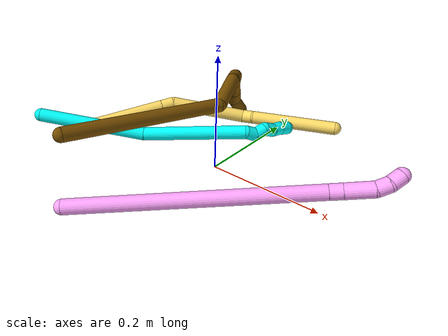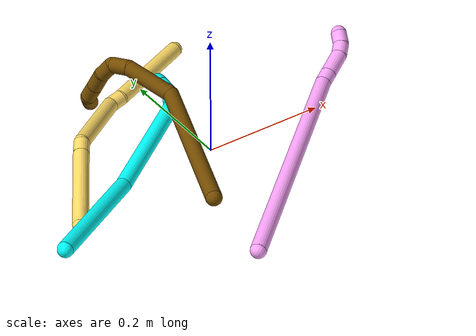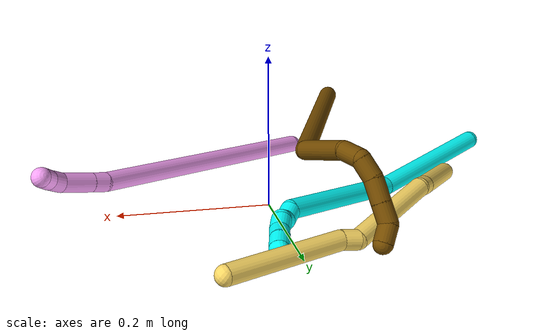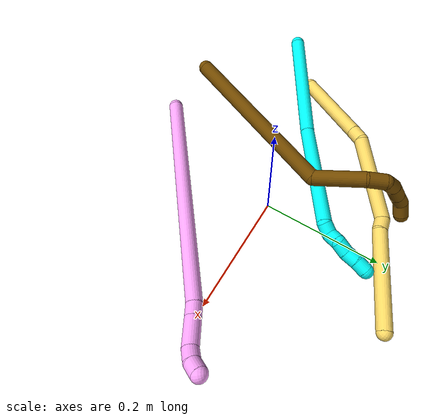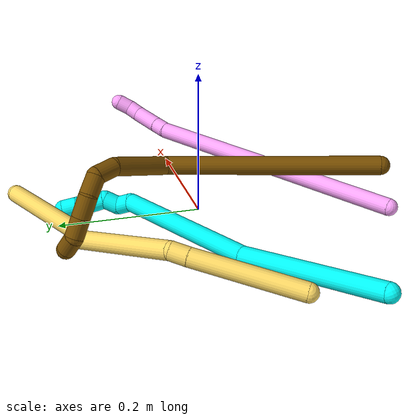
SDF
<sdf version="1.7">
 <world name="default">
  <model name="3">
   <static>0</static>
   <link name="3">
    <collision name="collision-cylinder-e_1_1_4">
     <pose>0.061668 0.057629 0.057524 -0.786308 0.648191 -0.276878</pose>
     <geometry><cylinder><radius>0.0125</radius><length>0.204286</length></cylinder></geometry>
     <surface>
      <friction><ode><mu>1.16</mu><mu2>1.16</mu2><slip1>0</slip1><slip2>0</slip2></ode></friction>
      <contact><ode><kp>1e+06</kp><kd>1</kd><max_vel>0</max_vel><min_depth>0.001</min_depth></ode></contact>
     </surface>
    </collision>
    <visual name="visual-cylinder-e_1_1_4">
     <pose>0.061668 0.057629 0.057524 -0.786308 0.648191 -0.276878</pose>
     <geometry><cylinder><radius>0.0125</radius><length>0.204286</length></cylinder></geometry>
     <material><ambient>0.003922 1 0.996078 1</ambient></material>
    </visual>
    <collision name="collision-cylinder-e_2_4_5">
     <pose>0.1962 0.155992 0.164533 -0.688709 0.849345 -0.32155</pose>
     <geometry><cylinder><radius>0.0125</radius><length>0.194081</length></cylinder></geometry>
     <surface>
      <friction><ode><mu>1.16</mu><mu2>1.16</mu2><slip1>0</slip1><slip2>0</slip2></ode></friction>
      <contact><ode><kp>1e+06</kp><kd>1</kd><max_vel>0</max_vel><min_depth>0.001</min_depth></ode></contact>
     </surface>
    </collision>
    <visual name="visual-cylinder-e_2_4_5">
     <pose>0.1962 0.155992 0.164533 -0.688709 0.849345 -0.32155</pose>
     <geometry><cylinder><radius>0.0125</radius><length>0.194081</length></cylinder></geometry>
     <material><ambient>0.003922 1 0.996078 1</ambient></material>
    </visual>
    <collision name="collision-cylinder-e_3_5_6">
     <pose>0.271879 0.201075 0.22275 -0.462036 0.28107 -0.066527</pose>
     <geometry><cylinder><radius>0.0125</radius><length>0.020309</length></cylinder></geometry>
     <surface>
      <friction><ode><mu>1.16</mu><mu2>1.16</mu2><slip1>0</slip1><slip2>0</slip2></ode></friction>
      <contact><ode><kp>1e+06</kp><kd>1</kd><max_vel>0</max_vel><min_depth>0.001</min_depth></ode></contact>
     </surface>
    </collision>
    <visual name="visual-cylinder-e_3_5_6">
     <pose>0.271879 0.201075 0.22275 -0.462036 0.28107 -0.066527</pose>
     <geometry><cylinder><radius>0.0125</radius><length>0.020309</length></cylinder></geometry>
     <material><ambient>0.003922 1 0.996078 1</ambient></material>
    </visual>
    <collision name="collision-cylinder-e_4_6_7">
     <pose>0.2824 0.204043 0.238386 0.197505 0.830465 0.087302</pose>
     <geometry><cylinder><radius>0.0125</radius><length>0.020871</length></cylinder></geometry>
     <surface>
      <friction><ode><mu>1.16</mu><mu2>1.16</mu2><slip1>0</slip1><slip2>0</slip2></ode></friction>
      <contact><ode><kp>1e+06</kp><kd>1</kd><max_vel>0</max_vel><min_depth>0.001</min_depth></ode></contact>
     </surface>
    </collision>
    <visual name="visual-cylinder-e_4_6_7">
     <pose>0.2824 0.204043 0.238386 0.197505 0.830465 0.087302</pose>
     <geometry><cylinder><radius>0.0125</radius><length>0.020871</length></cylinder></geometry>
     <material><ambient>0.003922 1 0.996078 1</ambient></material>
    </visual>
    <collision name="collision-cylinder-e_5_7_8">
     <pose>0.291899 0.205212 0.254894 -0.259572 0.178703 -0.023385</pose>
     <geometry><cylinder><radius>0.0125</radius><length>0.0202</length></cylinder></geometry>
     <surface>
      <friction><ode><mu>1.16</mu><mu2>1.16</mu2><slip1>0</slip1><slip2>0</slip2></ode></friction>
      <contact><ode><kp>1e+06</kp><kd>1</kd><max_vel>0</max_vel><min_depth>0.001</min_depth></ode></contact>
     </surface>
    </collision>
    <visual name="visual-cylinder-e_5_7_8">
     <pose>0.291899 0.205212 0.254894 -0.259572 0.178703 -0.023385</pose>
     <geometry><cylinder><radius>0.0125</radius><length>0.0202</length></cylinder></geometry>
     <material><ambient>0.003922 1 0.996078 1</ambient></material>
    </visual>
    <collision name="collision-cylinder-e_6_8_9">
     <pose>0.29665 0.207538 0.274153 0.02334 0.297009 0.003492</pose>
     <geometry><cylinder><radius>0.0125</radius><length>0.020195</length></cylinder></geometry>
     <surface>
      <friction><ode><mu>1.16</mu><mu2>1.16</mu2><slip1>0</slip1><slip2>0</slip2></ode></friction>
      <contact><ode><kp>1e+06</kp><kd>1</kd><max_vel>0</max_vel><min_depth>0.001</min_depth></ode></contact>
     </surface>
    </collision>
    <visual name="visual-cylinder-e_6_8_9">
     <pose>0.29665 0.207538 0.274153 0.02334 0.297009 0.003492</pose>
     <geometry><cylinder><radius>0.0125</radius><length>0.020195</length></cylinder></geometry>
     <material><ambient>0.003922 1 0.996078 1</ambient></material>
    </visual>
    <collision name="collision-cylinder-e_7_9_2">
     <pose>0.301726 0.20844 0.293543 -0.115279 0.213105 -0.012343</pose>
     <geometry><cylinder><radius>0.0125</radius><length>0.020057</length></cylinder></geometry>
     <surface>
      <friction><ode><mu>1.16</mu><mu2>1.16</mu2><slip1>0</slip1><slip2>0</slip2></ode></friction>
      <contact><ode><kp>1e+06</kp><kd>1</kd><max_vel>0</max_vel><min_depth>0.001</min_depth></ode></contact>
     </surface>
    </collision>
    <visual name="visual-cylinder-e_7_9_2">
     <pose>0.301726 0.20844 0.293543 -0.115279 0.213105 -0.012343</pose>
     <geometry><cylinder><radius>0.0125</radius><length>0.020057</length></cylinder></geometry>
     <material><ambient>0.003922 1 0.996078 1</ambient></material>
    </visual>
    <collision name="collision-sphere-2">
     <pose>0.303847 0.209568 0.303279 0 -0 0</pose>
     <geometry><sphere><radius>0.0125</radius></sphere></geometry>
     <surface>
      <friction><ode><mu>1.16</mu><mu2>1.16</mu2><slip1>0</slip1><slip2>0</slip2></ode></friction>
      <contact><ode><kp>1e+06</kp><kd>1</kd><max_vel>0</max_vel><min_depth>0.001</min_depth></ode></contact>
     </surface>
    </collision>
    <visual name="visual-sphere-2">
     <pose>0.303847 0.209568 0.303279 0 -0 0</pose>
     <geometry><sphere><radius>0.0125</radius></sphere></geometry>
     <material><ambient>0.003922 1 0.996078 1</ambient></material>
    </visual>
    <collision name="collision-sphere-9">
     <pose>0.299605 0.207313 0.283806 0 -0 0</pose>
     <geometry><sphere><radius>0.0125</radius></sphere></geometry>
     <surface>
      <friction><ode><mu>1.16</mu><mu2>1.16</mu2><slip1>0</slip1><slip2>0</slip2></ode></friction>
      <contact><ode><kp>1e+06</kp><kd>1</kd><max_vel>0</max_vel><min_depth>0.001</min_depth></ode></contact>
     </surface>
    </collision>
    <visual name="visual-sphere-9">
     <pose>0.299605 0.207313 0.283806 0 -0 0</pose>
     <geometry><sphere><radius>0.0125</radius></sphere></geometry>
     <material><ambient>0.003922 1 0.996078 1</ambient></material>
    </visual>
    <collision name="collision-sphere-4">
     <pose>0.123337 0.115259 0.115049 0 -0 0</pose>
     <geometry><sphere><radius>0.0125</radius></sphere></geometry>
     <surface>
      <friction><ode><mu>1.16</mu><mu2>1.16</mu2><slip1>0</slip1><slip2>0</slip2></ode></friction>
      <contact><ode><kp>1e+06</kp><kd>1</kd><max_vel>0</max_vel><min_depth>0.001</min_depth></ode></contact>
     </surface>
    </collision>
    <visual name="visual-sphere-4">
     <pose>0.123337 0.115259 0.115049 0 -0 0</pose>
     <geometry><sphere><radius>0.0125</radius></sphere></geometry>
     <material><ambient>0.003922 1 0.996078 1</ambient></material>
    </visual>
    <collision name="collision-sphere-1">
     <geometry><sphere><radius>0.0125</radius></sphere></geometry>
     <surface>
      <friction><ode><mu>1.16</mu><mu2>1.16</mu2><slip1>0</slip1><slip2>0</slip2></ode></friction>
      <contact><ode><kp>1e+06</kp><kd>1</kd><max_vel>0</max_vel><min_depth>0.001</min_depth></ode></contact>
     </surface>
    </collision>
    <visual name="visual-sphere-1">
     <geometry><sphere><radius>0.0125</radius></sphere></geometry>
     <material><ambient>0.003922 1 0.996078 1</ambient></material>
    </visual>
    <collision name="collision-sphere-8">
     <pose>0.293694 0.207763 0.2645 0 -0 0</pose>
     <geometry><sphere><radius>0.0125</radius></sphere></geometry>
     <surface>
      <friction><ode><mu>1.16</mu><mu2>1.16</mu2><slip1>0</slip1><slip2>0</slip2></ode></friction>
      <contact><ode><kp>1e+06</kp><kd>1</kd><max_vel>0</max_vel><min_depth>0.001</min_depth></ode></contact>
     </surface>
    </collision>
    <visual name="visual-sphere-8">
     <pose>0.293694 0.207763 0.2645 0 -0 0</pose>
     <geometry><sphere><radius>0.0125</radius></sphere></geometry>
     <material><ambient>0.003922 1 0.996078 1</ambient></material>
    </visual>
    <collision name="collision-sphere-5">
     <pose>0.269062 0.196726 0.214017 0 -0 0</pose>
     <geometry><sphere><radius>0.0125</radius></sphere></geometry>
     <surface>
      <friction><ode><mu>1.16</mu><mu2>1.16</mu2><slip1>0</slip1><slip2>0</slip2></ode></friction>
      <contact><ode><kp>1e+06</kp><kd>1</kd><max_vel>0</max_vel><min_depth>0.001</min_depth></ode></contact>
     </surface>
    </collision>
    <visual name="visual-sphere-5">
     <pose>0.269062 0.196726 0.214017 0 -0 0</pose>
     <geometry><sphere><radius>0.0125</radius></sphere></geometry>
     <material><ambient>0.003922 1 0.996078 1</ambient></material>
    </visual>
    <collision name="collision-sphere-6">
     <pose>0.274696 0.205424 0.231483 0 -0 0</pose>
     <geometry><sphere><radius>0.0125</radius></sphere></geometry>
     <surface>
      <friction><ode><mu>1.16</mu><mu2>1.16</mu2><slip1>0</slip1><slip2>0</slip2></ode></friction>
      <contact><ode><kp>1e+06</kp><kd>1</kd><max_vel>0</max_vel><min_depth>0.001</min_depth></ode></contact>
     </surface>
    </collision>
    <visual name="visual-sphere-6">
     <pose>0.274696 0.205424 0.231483 0 -0 0</pose>
     <geometry><sphere><radius>0.0125</radius></sphere></geometry>
     <material><ambient>0.003922 1 0.996078 1</ambient></material>
    </visual>
    <collision name="collision-sphere-7">
     <pose>0.290104 0.202661 0.245288 0 -0 0</pose>
     <geometry><sphere><radius>0.0125</radius></sphere></geometry>
     <surface>
      <friction><ode><mu>1.16</mu><mu2>1.16</mu2><slip1>0</slip1><slip2>0</slip2></ode></friction>
      <contact><ode><kp>1e+06</kp><kd>1</kd><max_vel>0</max_vel><min_depth>0.001</min_depth></ode></contact>
     </surface>
    </collision>
    <visual name="visual-sphere-7">
     <pose>0.290104 0.202661 0.245288 0 -0 0</pose>
     <geometry><sphere><radius>0.0125</radius></sphere></geometry>
     <material><ambient>0.003922 1 0.996078 1</ambient></material>
    </visual>
    <inertial>
     <pose>0.160063 0.125815 0.139513 0 -0 0</pose>
     <mass>0.5</mass>
     <inertia>
      <ixx>0.000683</ixx>
      <ixy>0</ixy>
      <ixz>0</ixz>
      <iyy>0.000855</iyy>
      <iyz>0</iyz>
      <izz>-0.001541</izz>
     </inertia>
    </inertial>
   </link>
   <pose>-0.335206 -0.122426 0.038494 -2.05857 -0.764641 0.346329</pose>
  </model>
  <model name="4">
   <static>0</static>
   <link name="4">
    <collision name="collision-cylinder-e_1_1_4">
     <pose>0.121141 0.152569 0.029058 -1.38259 0.662421 -0.554473</pose>
     <geometry><cylinder><radius>0.0125</radius><length>0.393938</length></cylinder></geometry>
     <surface>
      <friction><ode><mu>1.16</mu><mu2>1.16</mu2><slip1>0</slip1><slip2>0</slip2></ode></friction>
      <contact><ode><kp>1e+06</kp><kd>1</kd><max_vel>0</max_vel><min_depth>0.001</min_depth></ode></contact>
     </surface>
    </collision>
    <visual name="visual-cylinder-e_1_1_4">
     <pose>0.121141 0.152569 0.029058 -1.38259 0.662421 -0.554473</pose>
     <geometry><cylinder><radius>0.0125</radius><length>0.393938</length></cylinder></geometry>
     <material><ambient>1 0.65098 0.996078 1</ambient></material>
    </visual>
    <collision name="collision-cylinder-e_2_4_5">
     <pose>0.250066 0.312222 0.058558 -1.50852 0.831387 -0.786314</pose>
     <geometry><cylinder><radius>0.0125</radius><length>0.021068</length></cylinder></geometry>
     <surface>
      <friction><ode><mu>1.16</mu><mu2>1.16</mu2><slip1>0</slip1><slip2>0</slip2></ode></friction>
      <contact><ode><kp>1e+06</kp><kd>1</kd><max_vel>0</max_vel><min_depth>0.001</min_depth></ode></contact>
     </surface>
    </collision>
    <visual name="visual-cylinder-e_2_4_5">
     <pose>0.250066 0.312222 0.058558 -1.50852 0.831387 -0.786314</pose>
     <geometry><cylinder><radius>0.0125</radius><length>0.021068</length></cylinder></geometry>
     <material><ambient>1 0.65098 0.996078 1</ambient></material>
    </visual>
    <collision name="collision-cylinder-e_3_5_6">
     <pose>0.274263 0.333934 0.059991 -1.50311 0.841741 -0.792363</pose>
     <geometry><cylinder><radius>0.0125</radius><length>0.044019</length></cylinder></geometry>
     <surface>
      <friction><ode><mu>1.16</mu><mu2>1.16</mu2><slip1>0</slip1><slip2>0</slip2></ode></friction>
      <contact><ode><kp>1e+06</kp><kd>1</kd><max_vel>0</max_vel><min_depth>0.001</min_depth></ode></contact>
     </surface>
    </collision>
    <visual name="visual-cylinder-e_3_5_6">
     <pose>0.274263 0.333934 0.059991 -1.50311 0.841741 -0.792363</pose>
     <geometry><cylinder><radius>0.0125</radius><length>0.044019</length></cylinder></geometry>
     <material><ambient>1 0.65098 0.996078 1</ambient></material>
    </visual>
    <collision name="collision-cylinder-e_4_6_7">
     <pose>0.298604 0.354029 0.06426 -1.03075 0.893509 -0.52995</pose>
     <geometry><cylinder><radius>0.0125</radius><length>0.020341</length></cylinder></geometry>
     <surface>
      <friction><ode><mu>1.16</mu><mu2>1.16</mu2><slip1>0</slip1><slip2>0</slip2></ode></friction>
      <contact><ode><kp>1e+06</kp><kd>1</kd><max_vel>0</max_vel><min_depth>0.001</min_depth></ode></contact>
     </surface>
    </collision>
    <visual name="visual-cylinder-e_4_6_7">
     <pose>0.298604 0.354029 0.06426 -1.03075 0.893509 -0.52995</pose>
     <geometry><cylinder><radius>0.0125</radius><length>0.020341</length></cylinder></geometry>
     <material><ambient>1 0.65098 0.996078 1</ambient></material>
    </visual>
    <collision name="collision-cylinder-e_5_7_2">
     <pose>0.312887 0.364506 0.073936 -0.664304 0.66387 -0.236676</pose>
     <geometry><cylinder><radius>0.0125</radius><length>0.020634</length></cylinder></geometry>
     <surface>
      <friction><ode><mu>1.16</mu><mu2>1.16</mu2><slip1>0</slip1><slip2>0</slip2></ode></friction>
      <contact><ode><kp>1e+06</kp><kd>1</kd><max_vel>0</max_vel><min_depth>0.001</min_depth></ode></contact>
     </surface>
    </collision>
    <visual name="visual-cylinder-e_5_7_2">
     <pose>0.312887 0.364506 0.073936 -0.664304 0.66387 -0.236676</pose>
     <geometry><cylinder><radius>0.0125</radius><length>0.020634</length></cylinder></geometry>
     <material><ambient>1 0.65098 0.996078 1</ambient></material>
    </visual>
    <collision name="collision-sphere-2">
     <pose>0.319244 0.369516 0.080334 0 -0 0</pose>
     <geometry><sphere><radius>0.0125</radius></sphere></geometry>
     <surface>
      <friction><ode><mu>1.16</mu><mu2>1.16</mu2><slip1>0</slip1><slip2>0</slip2></ode></friction>
      <contact><ode><kp>1e+06</kp><kd>1</kd><max_vel>0</max_vel><min_depth>0.001</min_depth></ode></contact>
     </surface>
    </collision>
    <visual name="visual-sphere-2">
     <pose>0.319244 0.369516 0.080334 0 -0 0</pose>
     <geometry><sphere><radius>0.0125</radius></sphere></geometry>
     <material><ambient>1 0.65098 0.996078 1</ambient></material>
    </visual>
    <collision name="collision-sphere-7">
     <pose>0.30653 0.359496 0.067538 0 -0 0</pose>
     <geometry><sphere><radius>0.0125</radius></sphere></geometry>
     <surface>
      <friction><ode><mu>1.16</mu><mu2>1.16</mu2><slip1>0</slip1><slip2>0</slip2></ode></friction>
      <contact><ode><kp>1e+06</kp><kd>1</kd><max_vel>0</max_vel><min_depth>0.001</min_depth></ode></contact>
     </surface>
    </collision>
    <visual name="visual-sphere-7">
     <pose>0.30653 0.359496 0.067538 0 -0 0</pose>
     <geometry><sphere><radius>0.0125</radius></sphere></geometry>
     <material><ambient>1 0.65098 0.996078 1</ambient></material>
    </visual>
    <collision name="collision-sphere-6">
     <pose>0.290678 0.348563 0.060983 0 -0 0</pose>
     <geometry><sphere><radius>0.0125</radius></sphere></geometry>
     <surface>
      <friction><ode><mu>1.16</mu><mu2>1.16</mu2><slip1>0</slip1><slip2>0</slip2></ode></friction>
      <contact><ode><kp>1e+06</kp><kd>1</kd><max_vel>0</max_vel><min_depth>0.001</min_depth></ode></contact>
     </surface>
    </collision>
    <visual name="visual-sphere-6">
     <pose>0.290678 0.348563 0.060983 0 -0 0</pose>
     <geometry><sphere><radius>0.0125</radius></sphere></geometry>
     <material><ambient>1 0.65098 0.996078 1</ambient></material>
    </visual>
    <collision name="collision-sphere-5">
     <pose>0.257849 0.319306 0.059 0 -0 0</pose>
     <geometry><sphere><radius>0.0125</radius></sphere></geometry>
     <surface>
      <friction><ode><mu>1.16</mu><mu2>1.16</mu2><slip1>0</slip1><slip2>0</slip2></ode></friction>
      <contact><ode><kp>1e+06</kp><kd>1</kd><max_vel>0</max_vel><min_depth>0.001</min_depth></ode></contact>
     </surface>
    </collision>
    <visual name="visual-sphere-5">
     <pose>0.257849 0.319306 0.059 0 -0 0</pose>
     <geometry><sphere><radius>0.0125</radius></sphere></geometry>
     <material><ambient>1 0.65098 0.996078 1</ambient></material>
    </visual>
    <collision name="collision-sphere-1">
     <geometry><sphere><radius>0.0125</radius></sphere></geometry>
     <surface>
      <friction><ode><mu>1.16</mu><mu2>1.16</mu2><slip1>0</slip1><slip2>0</slip2></ode></friction>
      <contact><ode><kp>1e+06</kp><kd>1</kd><max_vel>0</max_vel><min_depth>0.001</min_depth></ode></contact>
     </surface>
    </collision>
    <visual name="visual-sphere-1">
     <geometry><sphere><radius>0.0125</radius></sphere></geometry>
     <material><ambient>1 0.65098 0.996078 1</ambient></material>
    </visual>
    <collision name="collision-sphere-4">
     <pose>0.242283 0.305137 0.058116 0 -0 0</pose>
     <geometry><sphere><radius>0.0125</radius></sphere></geometry>
     <surface>
      <friction><ode><mu>1.16</mu><mu2>1.16</mu2><slip1>0</slip1><slip2>0</slip2></ode></friction>
      <contact><ode><kp>1e+06</kp><kd>1</kd><max_vel>0</max_vel><min_depth>0.001</min_depth></ode></contact>
     </surface>
    </collision>
    <visual name="visual-sphere-4">
     <pose>0.242283 0.305137 0.058116 0 -0 0</pose>
     <geometry><sphere><radius>0.0125</radius></sphere></geometry>
     <material><ambient>1 0.65098 0.996078 1</ambient></material>
    </visual>
    <inertial>
     <pose>0.155187 0.192205 0.036309 0 -0 0</pose>
     <mass>0.5</mass>
     <inertia>
      <ixx>0.00133</ixx>
      <ixy>0</ixy>
      <ixz>0</ixz>
      <iyy>0.000349</iyy>
      <iyz>0</iyz>
      <izz>-0.007113</izz>
     </inertia>
    </inertial>
   </link>
   <pose>-0.089559 -0.254448 0.011837 -0.951304 -0.830753 0.086021</pose>
  </model>
  <model name="5">
   <static>0</static>
   <link name="5">
    <collision name="collision-cylinder-e_1_1_4">
     <pose>0.028821 0.067568 0.000178 -1.56816 0.40318 -0.402147</pose>
     <geometry><cylinder><radius>0.0125</radius><length>0.146916</length></cylinder></geometry>
     <surface>
      <friction><ode><mu>1.16</mu><mu2>1.16</mu2><slip1>0</slip1><slip2>0</slip2></ode></friction>
      <contact><ode><kp>1e+06</kp><kd>1</kd><max_vel>0</max_vel><min_depth>0.001</min_depth></ode></contact>
     </surface>
    </collision>
    <visual name="visual-cylinder-e_1_1_4">
     <pose>0.028821 0.067568 0.000178 -1.56816 0.40318 -0.402147</pose>
     <geometry><cylinder><radius>0.0125</radius><length>0.146916</length></cylinder></geometry>
     <material><ambient>1 0.858824 0.4 1</ambient></material>
    </visual>
    <collision name="collision-cylinder-e_2_4_5">
     <pose>0.061827 0.146481 0.000466 -1.56112 0.353422 -0.350087</pose>
     <geometry><cylinder><radius>0.0125</radius><length>0.024185</length></cylinder></geometry>
     <surface>
      <friction><ode><mu>1.16</mu><mu2>1.16</mu2><slip1>0</slip1><slip2>0</slip2></ode></friction>
      <contact><ode><kp>1e+06</kp><kd>1</kd><max_vel>0</max_vel><min_depth>0.001</min_depth></ode></contact>
     </surface>
    </collision>
    <visual name="visual-cylinder-e_2_4_5">
     <pose>0.061827 0.146481 0.000466 -1.56112 0.353422 -0.350087</pose>
     <geometry><cylinder><radius>0.0125</radius><length>0.024185</length></cylinder></geometry>
     <material><ambient>1 0.858824 0.4 1</ambient></material>
    </visual>
    <collision name="collision-cylinder-e_3_5_6">
     <pose>0.089049 0.21867 0.033119 -1.07966 0.322216 -0.194146</pose>
     <geometry><cylinder><radius>0.0125</radius><length>0.14549</length></cylinder></geometry>
     <surface>
      <friction><ode><mu>1.16</mu><mu2>1.16</mu2><slip1>0</slip1><slip2>0</slip2></ode></friction>
      <contact><ode><kp>1e+06</kp><kd>1</kd><max_vel>0</max_vel><min_depth>0.001</min_depth></ode></contact>
     </surface>
    </collision>
    <visual name="visual-cylinder-e_3_5_6">
     <pose>0.089049 0.21867 0.033119 -1.07966 0.322216 -0.194146</pose>
     <geometry><cylinder><radius>0.0125</radius><length>0.14549</length></cylinder></geometry>
     <material><ambient>1 0.858824 0.4 1</ambient></material>
    </visual>
    <collision name="collision-cylinder-e_4_6_7">
     <pose>0.1089 0.289162 0.070393 -1.11487 -0.288195 0.180418</pose>
     <geometry><cylinder><radius>0.0125</radius><length>0.022412</length></cylinder></geometry>
     <surface>
      <friction><ode><mu>1.16</mu><mu2>1.16</mu2><slip1>0</slip1><slip2>0</slip2></ode></friction>
      <contact><ode><kp>1e+06</kp><kd>1</kd><max_vel>0</max_vel><min_depth>0.001</min_depth></ode></contact>
     </surface>
    </collision>
    <visual name="visual-cylinder-e_4_6_7">
     <pose>0.1089 0.289162 0.070393 -1.11487 -0.288195 0.180418</pose>
     <geometry><cylinder><radius>0.0125</radius><length>0.022412</length></cylinder></geometry>
     <material><ambient>1 0.858824 0.4 1</ambient></material>
    </visual>
    <collision name="collision-cylinder-e_5_7_2">
     <pose>0.10609 0.371093 0.110545 -1.11516 0.004663 -0.002908</pose>
     <geometry><cylinder><radius>0.0125</radius><length>0.160996</length></cylinder></geometry>
     <surface>
      <friction><ode><mu>1.16</mu><mu2>1.16</mu2><slip1>0</slip1><slip2>0</slip2></ode></friction>
      <contact><ode><kp>1e+06</kp><kd>1</kd><max_vel>0</max_vel><min_depth>0.001</min_depth></ode></contact>
     </surface>
    </collision>
    <visual name="visual-cylinder-e_5_7_2">
     <pose>0.10609 0.371093 0.110545 -1.11516 0.004663 -0.002908</pose>
     <geometry><cylinder><radius>0.0125</radius><length>0.160996</length></cylinder></geometry>
     <material><ambient>1 0.858824 0.4 1</ambient></material>
    </visual>
    <collision name="collision-sphere-2">
     <pose>0.106466 0.443378 0.145966 0 -0 0</pose>
     <geometry><sphere><radius>0.0125</radius></sphere></geometry>
     <surface>
      <friction><ode><mu>1.16</mu><mu2>1.16</mu2><slip1>0</slip1><slip2>0</slip2></ode></friction>
      <contact><ode><kp>1e+06</kp><kd>1</kd><max_vel>0</max_vel><min_depth>0.001</min_depth></ode></contact>
     </surface>
    </collision>
    <visual name="visual-sphere-2">
     <pose>0.106466 0.443378 0.145966 0 -0 0</pose>
     <geometry><sphere><radius>0.0125</radius></sphere></geometry>
     <material><ambient>1 0.858824 0.4 1</ambient></material>
    </visual>
    <collision name="collision-sphere-7">
     <pose>0.105715 0.298808 0.075123 0 -0 0</pose>
     <geometry><sphere><radius>0.0125</radius></sphere></geometry>
     <surface>
      <friction><ode><mu>1.16</mu><mu2>1.16</mu2><slip1>0</slip1><slip2>0</slip2></ode></friction>
      <contact><ode><kp>1e+06</kp><kd>1</kd><max_vel>0</max_vel><min_depth>0.001</min_depth></ode></contact>
     </surface>
    </collision>
    <visual name="visual-sphere-7">
     <pose>0.105715 0.298808 0.075123 0 -0 0</pose>
     <geometry><sphere><radius>0.0125</radius></sphere></geometry>
     <material><ambient>1 0.858824 0.4 1</ambient></material>
    </visual>
    <collision name="collision-sphere-6">
     <pose>0.112085 0.279515 0.065662 0 -0 0</pose>
     <geometry><sphere><radius>0.0125</radius></sphere></geometry>
     <surface>
      <friction><ode><mu>1.16</mu><mu2>1.16</mu2><slip1>0</slip1><slip2>0</slip2></ode></friction>
      <contact><ode><kp>1e+06</kp><kd>1</kd><max_vel>0</max_vel><min_depth>0.001</min_depth></ode></contact>
     </surface>
    </collision>
    <visual name="visual-sphere-6">
     <pose>0.112085 0.279515 0.065662 0 -0 0</pose>
     <geometry><sphere><radius>0.0125</radius></sphere></geometry>
     <material><ambient>1 0.858824 0.4 1</ambient></material>
    </visual>
    <collision name="collision-sphere-5">
     <pose>0.066013 0.157825 0.000576 0 -0 0</pose>
     <geometry><sphere><radius>0.0125</radius></sphere></geometry>
     <surface>
      <friction><ode><mu>1.16</mu><mu2>1.16</mu2><slip1>0</slip1><slip2>0</slip2></ode></friction>
      <contact><ode><kp>1e+06</kp><kd>1</kd><max_vel>0</max_vel><min_depth>0.001</min_depth></ode></contact>
     </surface>
    </collision>
    <visual name="visual-sphere-5">
     <pose>0.066013 0.157825 0.000576 0 -0 0</pose>
     <geometry><sphere><radius>0.0125</radius></sphere></geometry>
     <material><ambient>1 0.858824 0.4 1</ambient></material>
    </visual>
    <collision name="collision-sphere-1">
     <geometry><sphere><radius>0.0125</radius></sphere></geometry>
     <surface>
      <friction><ode><mu>1.16</mu><mu2>1.16</mu2><slip1>0</slip1><slip2>0</slip2></ode></friction>
      <contact><ode><kp>1e+06</kp><kd>1</kd><max_vel>0</max_vel><min_depth>0.001</min_depth></ode></contact>
     </surface>
    </collision>
    <visual name="visual-sphere-1">
     <geometry><sphere><radius>0.0125</radius></sphere></geometry>
     <material><ambient>1 0.858824 0.4 1</ambient></material>
    </visual>
    <collision name="collision-sphere-4">
     <pose>0.057642 0.135136 0.000356 0 -0 0</pose>
     <geometry><sphere><radius>0.0125</radius></sphere></geometry>
     <surface>
      <friction><ode><mu>1.16</mu><mu2>1.16</mu2><slip1>0</slip1><slip2>0</slip2></ode></friction>
      <contact><ode><kp>1e+06</kp><kd>1</kd><max_vel>0</max_vel><min_depth>0.001</min_depth></ode></contact>
     </surface>
    </collision>
    <visual name="visual-sphere-4">
     <pose>0.057642 0.135136 0.000356 0 -0 0</pose>
     <geometry><sphere><radius>0.0125</radius></sphere></geometry>
     <material><ambient>1 0.858824 0.4 1</ambient></material>
    </visual>
    <inertial>
     <pose>0.076412 0.223018 0.048462 0 -0 0</pose>
     <mass>0.5</mass>
     <inertia>
      <ixx>0.000692</ixx>
      <ixy>0</ixy>
      <ixz>0</ixz>
      <iyy>0.000223</iyy>
      <iyz>0</iyz>
      <izz>-0.000969</izz>
     </inertia>
    </inertial>
   </link>
   <pose>-0.270464 -0.05695 0.011501 2.69792 0.496208 2.00677</pose>
  </model>
  <model name="12">
   <static>0</static>
   <link name="12">
    <collision name="collision-cylinder-e_1_1_4">
     <pose>-0.009674 -0.03219 0.136529 0.231546 -0.068859 -0.008011</pose>
     <geometry><cylinder><radius>0.0125</radius><length>0.281211</length></cylinder></geometry>
     <surface>
      <friction><ode><mu>1.16</mu><mu2>1.16</mu2><slip1>0</slip1><slip2>0</slip2></ode></friction>
      <contact><ode><kp>1e+06</kp><kd>1</kd><max_vel>0</max_vel><min_depth>0.001</min_depth></ode></contact>
     </surface>
    </collision>
    <visual name="visual-cylinder-e_1_1_4">
     <pose>-0.009674 -0.03219 0.136529 0.231546 -0.068859 -0.008011</pose>
     <geometry><cylinder><radius>0.0125</radius><length>0.281211</length></cylinder></geometry>
     <material><ambient>0.466667 0.301961 0 1</ambient></material>
    </visual>
    <collision name="collision-cylinder-e_2_4_5">
     <pose>0.005977 -0.079045 0.301662 0.47374 0.667294 0.166953</pose>
     <geometry><cylinder><radius>0.0125</radius><length>0.081846</length></cylinder></geometry>
     <surface>
      <friction><ode><mu>1.16</mu><mu2>1.16</mu2><slip1>0</slip1><slip2>0</slip2></ode></friction>
      <contact><ode><kp>1e+06</kp><kd>1</kd><max_vel>0</max_vel><min_depth>0.001</min_depth></ode></contact>
     </surface>
    </collision>
    <visual name="visual-cylinder-e_2_4_5">
     <pose>0.005977 -0.079045 0.301662 0.47374 0.667294 0.166953</pose>
     <geometry><cylinder><radius>0.0125</radius><length>0.081846</length></cylinder></geometry>
     <material><ambient>0.466667 0.301961 0 1</ambient></material>
    </visual>
    <collision name="collision-cylinder-e_3_5_6">
     <pose>0.038527 -0.103722 0.338542 0.880094 0.507571 0.243047</pose>
     <geometry><cylinder><radius>0.0125</radius><length>0.029725</length></cylinder></geometry>
     <surface>
      <friction><ode><mu>1.16</mu><mu2>1.16</mu2><slip1>0</slip1><slip2>0</slip2></ode></friction>
      <contact><ode><kp>1e+06</kp><kd>1</kd><max_vel>0</max_vel><min_depth>0.001</min_depth></ode></contact>
     </surface>
    </collision>
    <visual name="visual-cylinder-e_3_5_6">
     <pose>0.038527 -0.103722 0.338542 0.880094 0.507571 0.243047</pose>
     <geometry><cylinder><radius>0.0125</radius><length>0.029725</length></cylinder></geometry>
     <material><ambient>0.466667 0.301961 0 1</ambient></material>
    </visual>
    <collision name="collision-cylinder-e_4_6_7">
     <pose>0.04552 -0.127298 0.347963 1.48646 -0.016942 -0.01557</pose>
     <geometry><cylinder><radius>0.0125</radius><length>0.027229</length></cylinder></geometry>
     <surface>
      <friction><ode><mu>1.16</mu><mu2>1.16</mu2><slip1>0</slip1><slip2>0</slip2></ode></friction>
      <contact><ode><kp>1e+06</kp><kd>1</kd><max_vel>0</max_vel><min_depth>0.001</min_depth></ode></contact>
     </surface>
    </collision>
    <visual name="visual-cylinder-e_4_6_7">
     <pose>0.04552 -0.127298 0.347963 1.48646 -0.016942 -0.01557</pose>
     <geometry><cylinder><radius>0.0125</radius><length>0.027229</length></cylinder></geometry>
     <material><ambient>0.466667 0.301961 0 1</ambient></material>
    </visual>
    <collision name="collision-cylinder-e_5_7_8">
     <pose>0.041284 -0.155102 0.350517 1.47232 -0.272957 -0.247592</pose>
     <geometry><cylinder><radius>0.0125</radius><length>0.029719</length></cylinder></geometry>
     <surface>
      <friction><ode><mu>1.16</mu><mu2>1.16</mu2><slip1>0</slip1><slip2>0</slip2></ode></friction>
      <contact><ode><kp>1e+06</kp><kd>1</kd><max_vel>0</max_vel><min_depth>0.001</min_depth></ode></contact>
     </surface>
    </collision>
    <visual name="visual-cylinder-e_5_7_8">
     <pose>0.041284 -0.155102 0.350517 1.47232 -0.272957 -0.247592</pose>
     <geometry><cylinder><radius>0.0125</radius><length>0.029719</length></cylinder></geometry>
     <material><ambient>0.466667 0.301961 0 1</ambient></material>
    </visual>
    <collision name="collision-cylinder-e_6_8_9">
     <pose>0.03392 -0.181914 0.353165 1.47236 -0.259802 -0.235645</pose>
     <geometry><cylinder><radius>0.0125</radius><length>0.026142</length></cylinder></geometry>
     <surface>
      <friction><ode><mu>1.16</mu><mu2>1.16</mu2><slip1>0</slip1><slip2>0</slip2></ode></friction>
      <contact><ode><kp>1e+06</kp><kd>1</kd><max_vel>0</max_vel><min_depth>0.001</min_depth></ode></contact>
     </surface>
    </collision>
    <visual name="visual-cylinder-e_6_8_9">
     <pose>0.03392 -0.181914 0.353165 1.47236 -0.259802 -0.235645</pose>
     <geometry><cylinder><radius>0.0125</radius><length>0.026142</length></cylinder></geometry>
     <material><ambient>0.466667 0.301961 0 1</ambient></material>
    </visual>
    <collision name="collision-cylinder-e_7_9_2">
     <pose>0.02228 -0.201979 0.358967 1.02419 -0.75668 -0.439645</pose>
     <geometry><cylinder><radius>0.0125</radius><length>0.024128</length></cylinder></geometry>
     <surface>
      <friction><ode><mu>1.16</mu><mu2>1.16</mu2><slip1>0</slip1><slip2>0</slip2></ode></friction>
      <contact><ode><kp>1e+06</kp><kd>1</kd><max_vel>0</max_vel><min_depth>0.001</min_depth></ode></contact>
     </surface>
    </collision>
    <visual name="visual-cylinder-e_7_9_2">
     <pose>0.02228 -0.201979 0.358967 1.02419 -0.75668 -0.439645</pose>
     <geometry><cylinder><radius>0.0125</radius><length>0.024128</length></cylinder></geometry>
     <material><ambient>0.466667 0.301961 0 1</ambient></material>
    </visual>
    <collision name="collision-sphere-2">
     <pose>0.013998 -0.209473 0.363526 0 -0 0</pose>
     <geometry><sphere><radius>0.0125</radius></sphere></geometry>
     <surface>
      <friction><ode><mu>1.16</mu><mu2>1.16</mu2><slip1>0</slip1><slip2>0</slip2></ode></friction>
      <contact><ode><kp>1e+06</kp><kd>1</kd><max_vel>0</max_vel><min_depth>0.001</min_depth></ode></contact>
     </surface>
    </collision>
    <visual name="visual-sphere-2">
     <pose>0.013998 -0.209473 0.363526 0 -0 0</pose>
     <geometry><sphere><radius>0.0125</radius></sphere></geometry>
     <material><ambient>0.466667 0.301961 0 1</ambient></material>
    </visual>
    <collision name="collision-sphere-9">
     <pose>0.030562 -0.194485 0.354407 0 -0 0</pose>
     <geometry><sphere><radius>0.0125</radius></sphere></geometry>
     <surface>
      <friction><ode><mu>1.16</mu><mu2>1.16</mu2><slip1>0</slip1><slip2>0</slip2></ode></friction>
      <contact><ode><kp>1e+06</kp><kd>1</kd><max_vel>0</max_vel><min_depth>0.001</min_depth></ode></contact>
     </surface>
    </collision>
    <visual name="visual-sphere-9">
     <pose>0.030562 -0.194485 0.354407 0 -0 0</pose>
     <geometry><sphere><radius>0.0125</radius></sphere></geometry>
     <material><ambient>0.466667 0.301961 0 1</ambient></material>
    </visual>
    <collision name="collision-sphere-4">
     <pose>-0.019349 -0.06438 0.273057 0 -0 0</pose>
     <geometry><sphere><radius>0.0125</radius></sphere></geometry>
     <surface>
      <friction><ode><mu>1.16</mu><mu2>1.16</mu2><slip1>0</slip1><slip2>0</slip2></ode></friction>
      <contact><ode><kp>1e+06</kp><kd>1</kd><max_vel>0</max_vel><min_depth>0.001</min_depth></ode></contact>
     </surface>
    </collision>
    <visual name="visual-sphere-4">
     <pose>-0.019349 -0.06438 0.273057 0 -0 0</pose>
     <geometry><sphere><radius>0.0125</radius></sphere></geometry>
     <material><ambient>0.466667 0.301961 0 1</ambient></material>
    </visual>
    <collision name="collision-sphere-1">
     <geometry><sphere><radius>0.0125</radius></sphere></geometry>
     <surface>
      <friction><ode><mu>1.16</mu><mu2>1.16</mu2><slip1>0</slip1><slip2>0</slip2></ode></friction>
      <contact><ode><kp>1e+06</kp><kd>1</kd><max_vel>0</max_vel><min_depth>0.001</min_depth></ode></contact>
     </surface>
    </collision>
    <visual name="visual-sphere-1">
     <geometry><sphere><radius>0.0125</radius></sphere></geometry>
     <material><ambient>0.466667 0.301961 0 1</ambient></material>
    </visual>
    <collision name="collision-sphere-8">
     <pose>0.037278 -0.169342 0.351924 0 -0 0</pose>
     <geometry><sphere><radius>0.0125</radius></sphere></geometry>
     <surface>
      <friction><ode><mu>1.16</mu><mu2>1.16</mu2><slip1>0</slip1><slip2>0</slip2></ode></friction>
      <contact><ode><kp>1e+06</kp><kd>1</kd><max_vel>0</max_vel><min_depth>0.001</min_depth></ode></contact>
     </surface>
    </collision>
    <visual name="visual-sphere-8">
     <pose>0.037278 -0.169342 0.351924 0 -0 0</pose>
     <geometry><sphere><radius>0.0125</radius></sphere></geometry>
     <material><ambient>0.466667 0.301961 0 1</ambient></material>
    </visual>
    <collision name="collision-sphere-5">
     <pose>0.031303 -0.09371 0.330267 0 -0 0</pose>
     <geometry><sphere><radius>0.0125</radius></sphere></geometry>
     <surface>
      <friction><ode><mu>1.16</mu><mu2>1.16</mu2><slip1>0</slip1><slip2>0</slip2></ode></friction>
      <contact><ode><kp>1e+06</kp><kd>1</kd><max_vel>0</max_vel><min_depth>0.001</min_depth></ode></contact>
     </surface>
    </collision>
    <visual name="visual-sphere-5">
     <pose>0.031303 -0.09371 0.330267 0 -0 0</pose>
     <geometry><sphere><radius>0.0125</radius></sphere></geometry>
     <material><ambient>0.466667 0.301961 0 1</ambient></material>
    </visual>
    <collision name="collision-sphere-6">
     <pose>0.045751 -0.113734 0.346817 0 -0 0</pose>
     <geometry><sphere><radius>0.0125</radius></sphere></geometry>
     <surface>
      <friction><ode><mu>1.16</mu><mu2>1.16</mu2><slip1>0</slip1><slip2>0</slip2></ode></friction>
      <contact><ode><kp>1e+06</kp><kd>1</kd><max_vel>0</max_vel><min_depth>0.001</min_depth></ode></contact>
     </surface>
    </collision>
    <visual name="visual-sphere-6">
     <pose>0.045751 -0.113734 0.346817 0 -0 0</pose>
     <geometry><sphere><radius>0.0125</radius></sphere></geometry>
     <material><ambient>0.466667 0.301961 0 1</ambient></material>
    </visual>
    <collision name="collision-sphere-7">
     <pose>0.045289 -0.140862 0.34911 0 -0 0</pose>
     <geometry><sphere><radius>0.0125</radius></sphere></geometry>
     <surface>
      <friction><ode><mu>1.16</mu><mu2>1.16</mu2><slip1>0</slip1><slip2>0</slip2></ode></friction>
      <contact><ode><kp>1e+06</kp><kd>1</kd><max_vel>0</max_vel><min_depth>0.001</min_depth></ode></contact>
     </surface>
    </collision>
    <visual name="visual-sphere-7">
     <pose>0.045289 -0.140862 0.34911 0 -0 0</pose>
     <geometry><sphere><radius>0.0125</radius></sphere></geometry>
     <material><ambient>0.466667 0.301961 0 1</ambient></material>
    </visual>
    <inertial>
     <pose>0.005609 -0.072619 0.221863 0 -0 0</pose>
     <mass>0.5</mass>
     <inertia>
      <ixx>0.001901</ixx>
      <ixy>0</ixy>
      <ixz>0</ixz>
      <iyy>0.001839</iyy>
      <iyz>0</iyz>
      <izz>0.000584</izz>
     </inertia>
    </inertial>
   </link>
   <pose>-0.136027 -0.208516 0.099365 1.33503 -0.640643 2.83552</pose>
  </model>
 </world>
</sdf>
